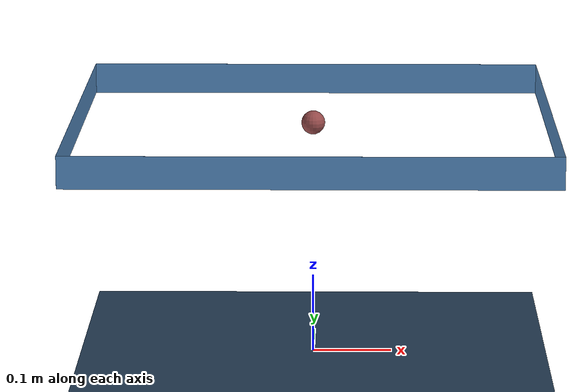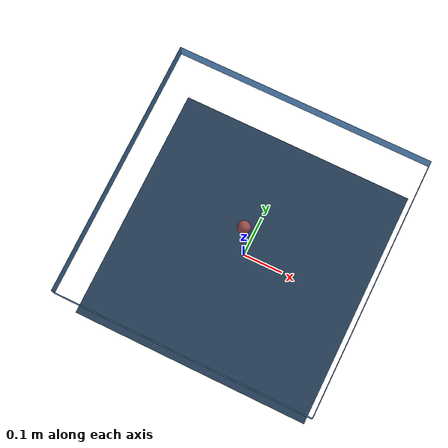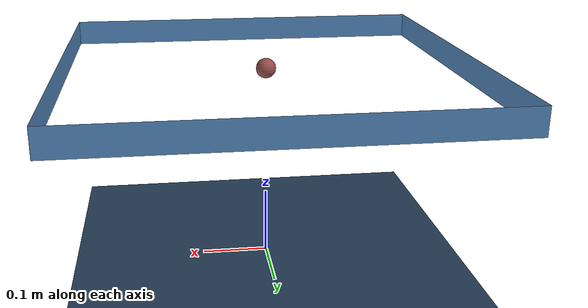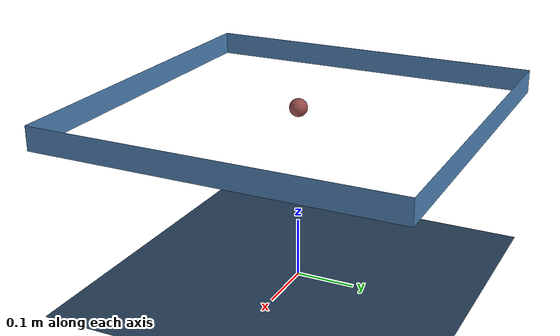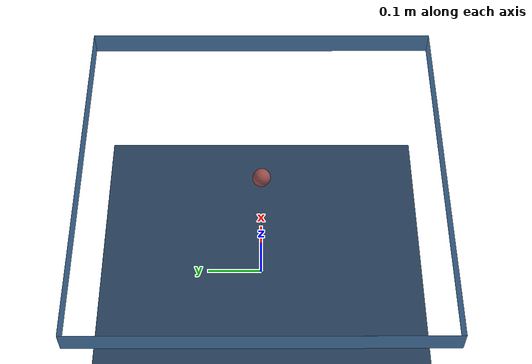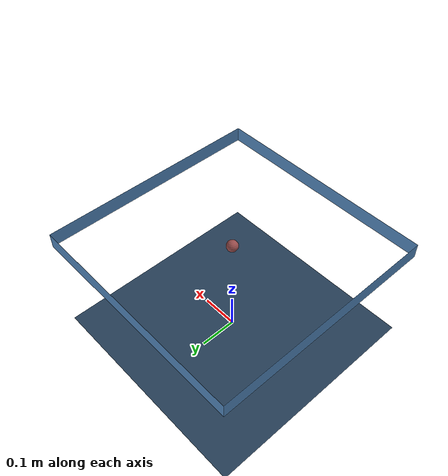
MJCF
<mujoco model="3d point mass">
  <include file="./common/skybox.xml"/>
  <include file="./common/visual.xml"/>
  <include file="./common/materials.xml"/>

  <option timestep="0.02">
    <flag contact="disable"/>
  </option>

  <default>
    <joint type="slide" limited="true" range="-.29 .29" damping="1"/>
    <motor gear=".1" ctrlrange="-1 1" ctrllimited="true"/>
  </default>

  <worldbody>
    <light name="light" pos="0 0 1"/>
    <!-- move camera up a bit to see volume -->
    <camera name="fixed" pos="0 0 1.0" quat="1 0 0 0"/>

    <!-- floor -->
    <geom name="floor" type="plane" pos="0 0 0" size=".3 .3 .1" material="grid"/>

    <!-- 4 side walls (same as before) -->
    <geom name="wall_x"      type="plane" pos="-.3 0 .3" zaxis="1 0 0"  size=".02 .3 .3" material="decoration"/>
    <geom name="wall_y"      type="plane" pos="0 -.3 .3" zaxis="0 1 0"  size=".3 .02 .3" material="decoration"/>
    <geom name="wall_neg_x"  type="plane" pos=".3 0 .3"  zaxis="-1 0 0" size=".02 .3 .3" material="decoration"/>
    <geom name="wall_neg_y"  type="plane" pos="0 .3 .3"  zaxis="0 -1 0" size=".3 .02 .3" material="decoration"/>

    <!-- ceiling (bounds z) -->
    <geom name="ceiling" type="plane" pos="0 0 .6" zaxis="0 0 -1" size=".3 .3 .02" material="decoration"/>

    <body name="pointmass" pos="0 0 .3">
      <camera name="cam0" pos="0 -0.45 0.45" xyaxes="1 0 0 0 0.7 0.7"/>

      <joint name="root_x" type="slide" pos="0 0 0" axis="1 0 0" />
      <joint name="root_y" type="slide" pos="0 0 0" axis="0 1 0" />
      <joint name="root_z" type="slide" pos="0 0 0" axis="0 0 1" range="0.01 0.59"/>

      <geom name="pointmass" type="sphere" size=".01" material="self" mass=".3"/>
    </body>

    <geom name="target" pos="0 0 .3" material="target" type="sphere" size=".015"/>
  </worldbody>

  <tendon>
    <fixed name="t1">
      <joint joint="root_x" coef="1"/>
      <joint joint="root_y" coef="0"/>
      <joint joint="root_z" coef="0"/>
    </fixed>
    <fixed name="t2">
      <joint joint="root_x" coef="0"/>
      <joint joint="root_y" coef="1"/>
      <joint joint="root_z" coef="0"/>
    </fixed>
    <fixed name="t3">
      <joint joint="root_x" coef="0"/>
      <joint joint="root_y" coef="0"/>
      <joint joint="root_z" coef="1"/>
    </fixed>
  </tendon>

  <actuator>
    <motor name="t1" tendon="t1"/>
    <motor name="t2" tendon="t2"/>
    <motor name="t3" tendon="t3"/>
  </actuator>
</mujoco>

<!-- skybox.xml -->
<mujoco>
    <asset>
        <texture name="skybox" type="skybox" builtin="gradient" rgb1=".4 .6 .8" rgb2="0 0 0"
                 width="800" height="800" mark="random" markrgb="1 1 1"/>
    </asset>
</mujoco>

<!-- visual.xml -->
<mujoco>
    <visual>
        <headlight ambient=".4 .4 .4" diffuse=".8 .8 .8" specular="0.1 0.1 0.1"/>
        <map znear=".01"/>
        <quality shadowsize="2048"/>
    </visual>
</mujoco>

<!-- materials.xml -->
<!--
Common textures, colors and materials to be used throughout this suite. Some
materials such as xxx_highlight are activated on occurence of certain events,
for example receiving a positive reward.
-->
<mujoco>
    <asset>
        <texture name="grid" type="2d" builtin="checker" rgb1=".1 .2 .3" rgb2=".2 .3 .4" width="300" height="300" mark="edge" markrgb=".2 .3 .4"/>
        <material name="grid" texture="grid" texrepeat="1 1" texuniform="true" reflectance=".2"/>
        <material name="self" rgba=".7 .5 .3 1"/>
        <material name="self_default" rgba=".7 .5 .3 1"/>
        <material name="self_highlight" rgba="0 .5 .3 1"/>
        <material name="effector" rgba=".7 .4 .2 1"/>
        <material name="effector_default" rgba=".7 .4 .2 1"/>
        <material name="effector_highlight" rgba="0 .5 .3 1"/>
        <material name="decoration" rgba=".3 .5 .7 1"/>
        <material name="eye" rgba="0 .2 1 1"/>
        <material name="target" rgba=".6 .3 .3 1"/>
        <material name="target_default" rgba=".6 .3 .3 1"/>
        <material name="target_highlight" rgba=".6 .3 .3 .4"/>
        <material name="site" rgba=".5 .5 .5 .3"/>
    </asset>
</mujoco>
